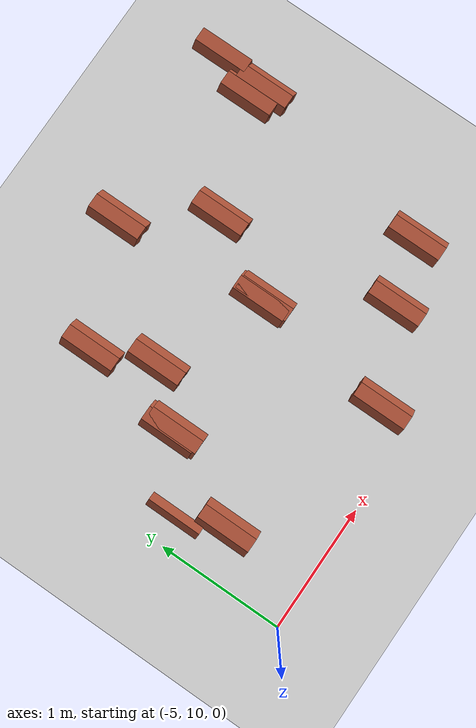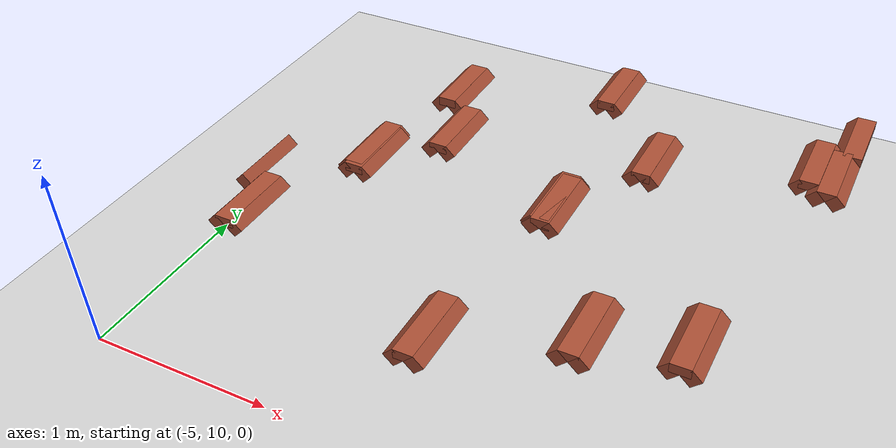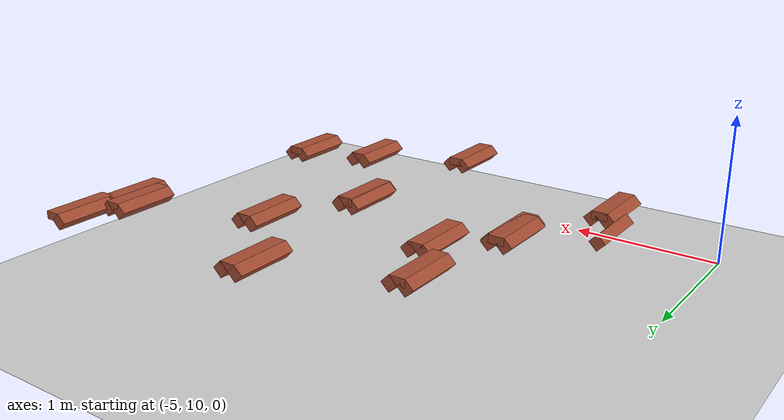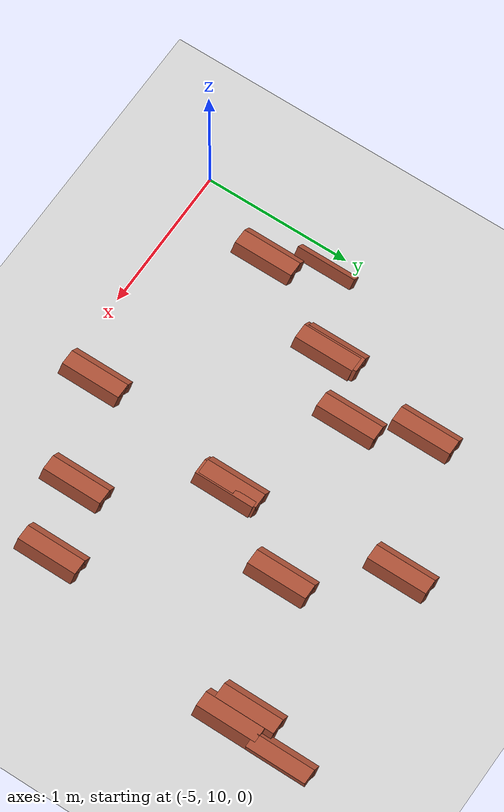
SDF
<sdf version="1.7">
 <world name="default">
  <model name="ground_plane">
   <static>1</static>
   <link name="link">
    <collision name="collision">
     <geometry><plane><normal>0 0 1</normal><size>100 100</size></plane></geometry>
     <surface><friction><ode><mu>100</mu><mu2>50</mu2></ode></friction></surface>
    </collision>
    <visual name="visual">
     <cast_shadows>0</cast_shadows>
     <geometry><plane><normal>0 0 1</normal><size>100 100</size></plane></geometry>
     <material>
      <script><uri>file://media/materials/scripts/gazebo.material</uri><name>Gazebo/Grey</name></script>
     </material>
    </visual>
   </link>
  </model>
  <model name="tumsek">
   <static>1</static>
   <pose>-5.17447 11.4027 0.5 0 -0 0</pose>
   <link name="tumsek_main_6">
    <pose>2.92633 -0.629082 0 0 -0 0</pose>
    <collision name="tumsek_Collision">
     <geometry><box><size>0.1 0.4 0.05</size></box></geometry>
     <pose>0 0 0.025 0 -0 0</pose>
    </collision>
    <visual name="tumsek_Visual">
     <pose>0 0 0.025 0 -0 0</pose>
     <geometry><box><size>0.1 0.4 0.05</size></box></geometry>
     <material>
      <script><uri>file://media/materials/scripts/gazebo.material</uri><name>Gazebo/Bricks</name></script>
      <ambient>1 1 1 1</ambient>
     </material>
     <meta><layer>0</layer></meta>
    </visual>
   </link>
   <link name="tumsek_front_6">
    <pose>2.97633 -0.629082 0 0 0.785 0</pose>
    <collision name="tumsek_Collision"><geometry><box><size>0.0707 0.4 0.0707</size></box></geometry></collision>
    <visual name="tumsek_Visual">
     <geometry><box><size>0.0707 0.4 0.0707</size></box></geometry>
     <material>
      <script><uri>file://media/materials/scripts/gazebo.material</uri><name>Gazebo/Bricks</name></script>
      <ambient>1 1 1 1</ambient>
     </material>
    </visual>
   </link>
   <link name="tumsek_back_6">
    <pose>2.87633 -0.629082 0 0 0.785 0</pose>
    <collision name="tumsek_Collision"><geometry><box><size>0.0707 0.4 0.0707</size></box></geometry></collision>
    <visual name="tumsek_Visual">
     <geometry><box><size>0.0707 0.4 0.0707</size></box></geometry>
     <material>
      <script><uri>file://media/materials/scripts/gazebo.material</uri><name>Gazebo/Bricks</name></script>
      <ambient>1 1 1 1</ambient>
     </material>
    </visual>
   </link>
   <link name="tumsek_main_7">
    <pose>1.08805 0.739805 0 0 -0 0</pose>
    <collision name="tumsek_Collision">
     <geometry><box><size>0.1 0.4 0.05</size></box></geometry>
     <pose>0 0 0.025 0 -0 0</pose>
    </collision>
    <visual name="tumsek_Visual">
     <pose>0 0 0.025 0 -0 0</pose>
     <geometry><box><size>0.1 0.4 0.05</size></box></geometry>
     <material>
      <script><uri>file://media/materials/scripts/gazebo.material</uri><name>Gazebo/Bricks</name></script>
      <ambient>1 1 1 1</ambient>
     </material>
     <meta><layer>0</layer></meta>
    </visual>
   </link>
   <link name="tumsek_front_7">
    <pose>1.13805 0.739805 0 0 0.785 0</pose>
    <collision name="tumsek_Collision"><geometry><box><size>0.0707 0.4 0.0707</size></box></geometry></collision>
    <visual name="tumsek_Visual">
     <geometry><box><size>0.0707 0.4 0.0707</size></box></geometry>
     <material>
      <script><uri>file://media/materials/scripts/gazebo.material</uri><name>Gazebo/Bricks</name></script>
      <ambient>1 1 1 1</ambient>
     </material>
    </visual>
   </link>
   <link name="tumsek_back_7">
    <pose>1.03805 0.739805 0 0 0.785 0</pose>
    <collision name="tumsek_Collision"><geometry><box><size>0.0707 0.4 0.0707</size></box></geometry></collision>
    <visual name="tumsek_Visual">
     <geometry><box><size>0.0707 0.4 0.0707</size></box></geometry>
     <material>
      <script><uri>file://media/materials/scripts/gazebo.material</uri><name>Gazebo/Bricks</name></script>
      <ambient>1 1 1 1</ambient>
     </material>
    </visual>
   </link>
   <link name="tumsek_main_8">
    <pose>3.2512 1.16803 0 0 -0 0</pose>
    <collision name="tumsek_Collision">
     <geometry><box><size>0.1 0.4 0.05</size></box></geometry>
     <pose>0 0 0.025 0 -0 0</pose>
    </collision>
    <visual name="tumsek_Visual">
     <pose>0 0 0.025 0 -0 0</pose>
     <geometry><box><size>0.1 0.4 0.05</size></box></geometry>
     <material>
      <script><uri>file://media/materials/scripts/gazebo.material</uri><name>Gazebo/Bricks</name></script>
      <ambient>1 1 1 1</ambient>
     </material>
     <meta><layer>0</layer></meta>
    </visual>
   </link>
   <link name="tumsek_back_8">
    <pose>3.2012 1.16803 0 0 0.785 0</pose>
    <collision name="tumsek_Collision"><geometry><box><size>0.0707 0.4 0.0707</size></box></geometry></collision>
    <visual name="tumsek_Visual">
     <geometry><box><size>0.0707 0.4 0.0707</size></box></geometry>
     <material>
      <script><uri>file://media/materials/scripts/gazebo.material</uri><name>Gazebo/Bricks</name></script>
      <ambient>1 1 1 1</ambient>
     </material>
    </visual>
   </link>
   <link name="tumsek_main_11">
    <pose>2.31423 0.549426 0 0 -0 0</pose>
    <collision name="tumsek_Collision">
     <geometry><box><size>0.1 0.4 0.05</size></box></geometry>
     <pose>0 0 0.025 0 -0 0</pose>
    </collision>
    <visual name="tumsek_Visual">
     <pose>0 0 0.025 0 -0 0</pose>
     <geometry><box><size>0.1 0.4 0.05</size></box></geometry>
     <material>
      <script><uri>file://media/materials/scripts/gazebo.material</uri><name>Gazebo/Bricks</name></script>
      <ambient>1 1 1 1</ambient>
     </material>
     <meta><layer>0</layer></meta>
    </visual>
   </link>
   <link name="tumsek_front_11">
    <pose>2.36423 0.549426 0 0 0.785 0</pose>
    <collision name="tumsek_Collision"><geometry><box><size>0.0707 0.4 0.0707</size></box></geometry></collision>
    <visual name="tumsek_Visual">
     <geometry><box><size>0.0707 0.4 0.0707</size></box></geometry>
     <material>
      <script><uri>file://media/materials/scripts/gazebo.material</uri><name>Gazebo/Bricks</name></script>
      <ambient>1 1 1 1</ambient>
     </material>
    </visual>
   </link>
   <link name="tumsek_back_11">
    <pose>2.26423 0.549426 0 0 0.785 0</pose>
    <collision name="tumsek_Collision"><geometry><box><size>0.0707 0.4 0.0707</size></box></geometry></collision>
    <visual name="tumsek_Visual">
     <geometry><box><size>0.0707 0.4 0.0707</size></box></geometry>
     <material>
      <script><uri>file://media/materials/scripts/gazebo.material</uri><name>Gazebo/Bricks</name></script>
      <ambient>1 1 1 1</ambient>
     </material>
    </visual>
   </link>
   <link name="tumsek_main_22">
    <pose>3.20055 0.798281 0 0 -0 0</pose>
    <collision name="tumsek_Collision">
     <geometry><box><size>0.1 0.4 0.05</size></box></geometry>
     <pose>0 0 0.025 0 -0 0</pose>
    </collision>
    <visual name="tumsek_Visual">
     <pose>0 0 0.025 0 -0 0</pose>
     <geometry><box><size>0.1 0.4 0.05</size></box></geometry>
     <material>
      <script><uri>file://media/materials/scripts/gazebo.material</uri><name>Gazebo/Bricks</name></script>
      <ambient>1 1 1 1</ambient>
     </material>
     <meta><layer>0</layer></meta>
    </visual>
   </link>
   <link name="tumsek_front_22">
    <pose>3.25055 0.798281 0 0 0.785 0</pose>
    <collision name="tumsek_Collision"><geometry><box><size>0.0707 0.4 0.0707</size></box></geometry></collision>
    <visual name="tumsek_Visual">
     <geometry><box><size>0.0707 0.4 0.0707</size></box></geometry>
     <material>
      <script><uri>file://media/materials/scripts/gazebo.material</uri><name>Gazebo/Bricks</name></script>
      <ambient>1 1 1 1</ambient>
     </material>
    </visual>
   </link>
   <link name="tumsek_back_22">
    <pose>3.15055 0.798281 0 0 0.785 0</pose>
    <collision name="tumsek_Collision"><geometry><box><size>0.0707 0.4 0.0707</size></box></geometry></collision>
    <visual name="tumsek_Visual">
     <geometry><box><size>0.0707 0.4 0.0707</size></box></geometry>
     <material>
      <script><uri>file://media/materials/scripts/gazebo.material</uri><name>Gazebo/Bricks</name></script>
      <ambient>1 1 1 1</ambient>
     </material>
    </visual>
   </link>
   <link name="tumsek_main_23">
    <pose>1.8665 -1.06323 0 0 -0 0</pose>
    <collision name="tumsek_Collision">
     <geometry><box><size>0.1 0.4 0.05</size></box></geometry>
     <pose>0 0 0.025 0 -0 0</pose>
    </collision>
    <visual name="tumsek_Visual">
     <pose>0 0 0.025 0 -0 0</pose>
     <geometry><box><size>0.1 0.4 0.05</size></box></geometry>
     <material>
      <script><uri>file://media/materials/scripts/gazebo.material</uri><name>Gazebo/Bricks</name></script>
      <ambient>1 1 1 1</ambient>
     </material>
     <meta><layer>0</layer></meta>
    </visual>
   </link>
   <link name="tumsek_front_23">
    <pose>1.9165 -1.06323 0 0 0.785 0</pose>
    <collision name="tumsek_Collision"><geometry><box><size>0.0707 0.4 0.0707</size></box></geometry></collision>
    <visual name="tumsek_Visual">
     <geometry><box><size>0.0707 0.4 0.0707</size></box></geometry>
     <material>
      <script><uri>file://media/materials/scripts/gazebo.material</uri><name>Gazebo/Bricks</name></script>
      <ambient>1 1 1 1</ambient>
     </material>
    </visual>
   </link>
   <link name="tumsek_back_23">
    <pose>1.8165 -1.06323 0 0 0.785 0</pose>
    <collision name="tumsek_Collision"><geometry><box><size>0.0707 0.4 0.0707</size></box></geometry></collision>
    <visual name="tumsek_Visual">
     <geometry><box><size>0.0707 0.4 0.0707</size></box></geometry>
     <material>
      <script><uri>file://media/materials/scripts/gazebo.material</uri><name>Gazebo/Bricks</name></script>
      <ambient>1 1 1 1</ambient>
     </material>
    </visual>
   </link>
   <link name="tumsek_main_25">
    <pose>2.01096 -0.019513 0 0 -0 0</pose>
    <collision name="tumsek_Collision">
     <geometry><box><size>0.1 0.4 0.05</size></box></geometry>
     <pose>0 0 0.025 0 -0 0</pose>
    </collision>
    <visual name="tumsek_Visual">
     <pose>0 0 0.025 0 -0 0</pose>
     <geometry><box><size>0.1 0.4 0.05</size></box></geometry>
     <material>
      <script><uri>file://media/materials/scripts/gazebo.material</uri><name>Gazebo/Bricks</name></script>
      <ambient>1 1 1 1</ambient>
     </material>
     <meta><layer>0</layer></meta>
    </visual>
   </link>
   <link name="tumsek_front_25">
    <pose>2.06095 -0.019513 0 0 0.785 0</pose>
    <collision name="tumsek_Collision"><geometry><box><size>0.0707 0.4 0.0707</size></box></geometry></collision>
    <visual name="tumsek_Visual">
     <geometry><box><size>0.0707 0.4 0.0707</size></box></geometry>
     <material>
      <script><uri>file://media/materials/scripts/gazebo.material</uri><name>Gazebo/Bricks</name></script>
      <ambient>1 1 1 1</ambient>
     </material>
    </visual>
   </link>
   <link name="tumsek_back_25">
    <pose>1.96096 -0.019513 0 0 0.785 0</pose>
    <collision name="tumsek_Collision"><geometry><box><size>0.0707 0.4 0.0707</size></box></geometry></collision>
    <visual name="tumsek_Visual">
     <geometry><box><size>0.0707 0.4 0.0707</size></box></geometry>
     <material>
      <script><uri>file://media/materials/scripts/gazebo.material</uri><name>Gazebo/Bricks</name></script>
      <ambient>1 1 1 1</ambient>
     </material>
    </visual>
   </link>
   <link name="tumsek_main_26">
    <pose>0.957826 -0.026631 0 0 -0 0</pose>
    <collision name="tumsek_Collision">
     <geometry><box><size>0.1 0.4 0.05</size></box></geometry>
     <pose>0 0 0.025 0 -0 0</pose>
    </collision>
    <visual name="tumsek_Visual">
     <pose>0 0 0.025 0 -0 0</pose>
     <geometry><box><size>0.1 0.4 0.05</size></box></geometry>
     <material>
      <script><uri>file://media/materials/scripts/gazebo.material</uri><name>Gazebo/Bricks</name></script>
      <ambient>1 1 1 1</ambient>
     </material>
     <meta><layer>0</layer></meta>
    </visual>
   </link>
   <link name="tumsek_front_26">
    <pose>1.00783 -0.026631 0 0 0.785 0</pose>
    <collision name="tumsek_Collision"><geometry><box><size>0.0707 0.4 0.0707</size></box></geometry></collision>
    <visual name="tumsek_Visual">
     <geometry><box><size>0.0707 0.4 0.0707</size></box></geometry>
     <material>
      <script><uri>file://media/materials/scripts/gazebo.material</uri><name>Gazebo/Bricks</name></script>
      <ambient>1 1 1 1</ambient>
     </material>
    </visual>
   </link>
   <link name="tumsek_back_26">
    <pose>0.907826 -0.026631 0 0 0.785 0</pose>
    <collision name="tumsek_Collision"><geometry><box><size>0.0707 0.4 0.0707</size></box></geometry></collision>
    <visual name="tumsek_Visual">
     <geometry><box><size>0.0707 0.4 0.0707</size></box></geometry>
     <material>
      <script><uri>file://media/materials/scripts/gazebo.material</uri><name>Gazebo/Bricks</name></script>
      <ambient>1 1 1 1</ambient>
     </material>
    </visual>
   </link>
   <link name="tumsek_main_34">
    <pose>1.90357 1.10206 0 0 -0 0</pose>
    <collision name="tumsek_Collision">
     <geometry><box><size>0.1 0.4 0.05</size></box></geometry>
     <pose>0 0 0.025 0 -0 0</pose>
    </collision>
    <visual name="tumsek_Visual">
     <pose>0 0 0.025 0 -0 0</pose>
     <geometry><box><size>0.1 0.4 0.05</size></box></geometry>
     <material>
      <script><uri>file://media/materials/scripts/gazebo.material</uri><name>Gazebo/Bricks</name></script>
      <ambient>1 1 1 1</ambient>
     </material>
     <meta><layer>0</layer></meta>
    </visual>
   </link>
   <link name="tumsek_front_34">
    <pose>1.95357 1.10206 0 0 0.785 0</pose>
    <collision name="tumsek_Collision"><geometry><box><size>0.0707 0.4 0.0707</size></box></geometry></collision>
    <visual name="tumsek_Visual">
     <geometry><box><size>0.0707 0.4 0.0707</size></box></geometry>
     <material>
      <script><uri>file://media/materials/scripts/gazebo.material</uri><name>Gazebo/Bricks</name></script>
      <ambient>1 1 1 1</ambient>
     </material>
    </visual>
   </link>
   <link name="tumsek_back_34">
    <pose>1.85357 1.10206 0 0 0.785 0</pose>
    <collision name="tumsek_Collision"><geometry><box><size>0.0707 0.4 0.0707</size></box></geometry></collision>
    <visual name="tumsek_Visual">
     <geometry><box><size>0.0707 0.4 0.0707</size></box></geometry>
     <material>
      <script><uri>file://media/materials/scripts/gazebo.material</uri><name>Gazebo/Bricks</name></script>
      <ambient>1 1 1 1</ambient>
     </material>
    </visual>
   </link>
   <link name="tumsek_main_35">
    <pose>2.00097 -0.004756 0 0 -0 0</pose>
    <collision name="tumsek_Collision">
     <geometry><box><size>0.1 0.4 0.05</size></box></geometry>
     <pose>0 0 0.025 0 -0 0</pose>
    </collision>
    <visual name="tumsek_Visual">
     <pose>0 0 0.025 0 -0 0</pose>
     <geometry><box><size>0.1 0.4 0.05</size></box></geometry>
     <material>
      <script><uri>file://media/materials/scripts/gazebo.material</uri><name>Gazebo/Bricks</name></script>
      <ambient>1 1 1 1</ambient>
     </material>
     <meta><layer>0</layer></meta>
    </visual>
   </link>
   <link name="tumsek_front_35">
    <pose>2.05097 -0.004756 0 0 0.785 0</pose>
    <collision name="tumsek_Collision"><geometry><box><size>0.0707 0.4 0.0707</size></box></geometry></collision>
    <visual name="tumsek_Visual">
     <geometry><box><size>0.0707 0.4 0.0707</size></box></geometry>
     <material>
      <script><uri>file://media/materials/scripts/gazebo.material</uri><name>Gazebo/Bricks</name></script>
      <ambient>1 1 1 1</ambient>
     </material>
    </visual>
   </link>
   <link name="tumsek_back_35">
    <pose>1.95097 -0.004756 0 0 0.785 0</pose>
    <collision name="tumsek_Collision"><geometry><box><size>0.0707 0.4 0.0707</size></box></geometry></collision>
    <visual name="tumsek_Visual">
     <geometry><box><size>0.0707 0.4 0.0707</size></box></geometry>
     <material>
      <script><uri>file://media/materials/scripts/gazebo.material</uri><name>Gazebo/Bricks</name></script>
      <ambient>1 1 1 1</ambient>
     </material>
    </visual>
   </link>
   <link name="tumsek_main_43">
    <pose>0.634692 -0.672287 0 0 -0 0</pose>
    <collision name="tumsek_Collision">
     <geometry><box><size>0.1 0.4 0.05</size></box></geometry>
     <pose>0 0 0.025 0 -0 0</pose>
    </collision>
    <visual name="tumsek_Visual">
     <pose>0 0 0.025 0 -0 0</pose>
     <geometry><box><size>0.1 0.4 0.05</size></box></geometry>
     <material>
      <script><uri>file://media/materials/scripts/gazebo.material</uri><name>Gazebo/Bricks</name></script>
      <ambient>1 1 1 1</ambient>
     </material>
     <meta><layer>0</layer></meta>
    </visual>
   </link>
   <link name="tumsek_front_43">
    <pose>0.684692 -0.672287 0 0 0.785 0</pose>
    <collision name="tumsek_Collision"><geometry><box><size>0.0707 0.4 0.0707</size></box></geometry></collision>
    <visual name="tumsek_Visual">
     <geometry><box><size>0.0707 0.4 0.0707</size></box></geometry>
     <material>
      <script><uri>file://media/materials/scripts/gazebo.material</uri><name>Gazebo/Bricks</name></script>
      <ambient>1 1 1 1</ambient>
     </material>
    </visual>
   </link>
   <link name="tumsek_back_43">
    <pose>0.584692 -0.672287 0 0 0.785 0</pose>
    <collision name="tumsek_Collision"><geometry><box><size>0.0707 0.4 0.0707</size></box></geometry></collision>
    <visual name="tumsek_Visual">
     <geometry><box><size>0.0707 0.4 0.0707</size></box></geometry>
     <material>
      <script><uri>file://media/materials/scripts/gazebo.material</uri><name>Gazebo/Bricks</name></script>
      <ambient>1 1 1 1</ambient>
     </material>
    </visual>
   </link>
   <link name="tumsek_main_46">
    <pose>1.25877 0.324215 0 0 -0 0</pose>
    <collision name="tumsek_Collision">
     <geometry><box><size>0.1 0.4 0.05</size></box></geometry>
     <pose>0 0 0.025 0 -0 0</pose>
    </collision>
    <visual name="tumsek_Visual">
     <pose>0 0 0.025 0 -0 0</pose>
     <geometry><box><size>0.1 0.4 0.05</size></box></geometry>
     <material>
      <script><uri>file://media/materials/scripts/gazebo.material</uri><name>Gazebo/Bricks</name></script>
      <ambient>1 1 1 1</ambient>
     </material>
     <meta><layer>0</layer></meta>
    </visual>
   </link>
   <link name="tumsek_front_46">
    <pose>1.30877 0.324215 0 0 0.785 0</pose>
    <collision name="tumsek_Collision"><geometry><box><size>0.0707 0.4 0.0707</size></box></geometry></collision>
    <visual name="tumsek_Visual">
     <geometry><box><size>0.0707 0.4 0.0707</size></box></geometry>
     <material>
      <script><uri>file://media/materials/scripts/gazebo.material</uri><name>Gazebo/Bricks</name></script>
      <ambient>1 1 1 1</ambient>
     </material>
    </visual>
   </link>
   <link name="tumsek_back_46">
    <pose>1.20877 0.324215 0 0 0.785 0</pose>
    <collision name="tumsek_Collision"><geometry><box><size>0.0707 0.4 0.0707</size></box></geometry></collision>
    <visual name="tumsek_Visual">
     <geometry><box><size>0.0707 0.4 0.0707</size></box></geometry>
     <material>
      <script><uri>file://media/materials/scripts/gazebo.material</uri><name>Gazebo/Bricks</name></script>
      <ambient>1 1 1 1</ambient>
     </material>
    </visual>
   </link>
   <link name="tumsek_main_48">
    <pose>3.09964 0.856042 0 0 -0 0</pose>
    <collision name="tumsek_Collision">
     <geometry><box><size>0.1 0.4 0.05</size></box></geometry>
     <pose>0 0 0.025 0 -0 0</pose>
    </collision>
    <visual name="tumsek_Visual">
     <pose>0 0 0.025 0 -0 0</pose>
     <geometry><box><size>0.1 0.4 0.05</size></box></geometry>
     <material>
      <script><uri>file://media/materials/scripts/gazebo.material</uri><name>Gazebo/Bricks</name></script>
      <ambient>1 1 1 1</ambient>
     </material>
     <meta><layer>0</layer></meta>
    </visual>
   </link>
   <link name="tumsek_front_48">
    <pose>3.14963 0.856042 0 0 0.785 0</pose>
    <collision name="tumsek_Collision"><geometry><box><size>0.0707 0.4 0.0707</size></box></geometry></collision>
    <visual name="tumsek_Visual">
     <geometry><box><size>0.0707 0.4 0.0707</size></box></geometry>
     <material>
      <script><uri>file://media/materials/scripts/gazebo.material</uri><name>Gazebo/Bricks</name></script>
      <ambient>1 1 1 1</ambient>
     </material>
    </visual>
   </link>
   <link name="tumsek_back_48">
    <pose>3.04963 0.856042 0 0 0.785 0</pose>
    <collision name="tumsek_Collision"><geometry><box><size>0.0707 0.4 0.0707</size></box></geometry></collision>
    <visual name="tumsek_Visual">
     <geometry><box><size>0.0707 0.4 0.0707</size></box></geometry>
     <material>
      <script><uri>file://media/materials/scripts/gazebo.material</uri><name>Gazebo/Bricks</name></script>
      <ambient>1 1 1 1</ambient>
     </material>
    </visual>
   </link>
   <link name="tumsek_main_49">
    <pose>0.94678 -0.004355 0 0 -0 0</pose>
    <collision name="tumsek_Collision">
     <geometry><box><size>0.1 0.4 0.05</size></box></geometry>
     <pose>0 0 0.025 0 -0 0</pose>
    </collision>
    <visual name="tumsek_Visual">
     <pose>0 0 0.025 0 -0 0</pose>
     <geometry><box><size>0.1 0.4 0.05</size></box></geometry>
     <material>
      <script><uri>file://media/materials/scripts/gazebo.material</uri><name>Gazebo/Bricks</name></script>
      <ambient>1 1 1 1</ambient>
     </material>
     <meta><layer>0</layer></meta>
    </visual>
   </link>
   <link name="tumsek_front_49">
    <pose>0.99678 -0.004355 0 0 0.785 0</pose>
    <collision name="tumsek_Collision"><geometry><box><size>0.0707 0.4 0.0707</size></box></geometry></collision>
    <visual name="tumsek_Visual">
     <geometry><box><size>0.0707 0.4 0.0707</size></box></geometry>
     <material>
      <script><uri>file://media/materials/scripts/gazebo.material</uri><name>Gazebo/Bricks</name></script>
      <ambient>1 1 1 1</ambient>
     </material>
    </visual>
   </link>
   <link name="tumsek_back_49">
    <pose>0.89678 -0.004355 0 0 0.785 0</pose>
    <collision name="tumsek_Collision"><geometry><box><size>0.0707 0.4 0.0707</size></box></geometry></collision>
    <visual name="tumsek_Visual">
     <geometry><box><size>0.0707 0.4 0.0707</size></box></geometry>
     <material>
      <script><uri>file://media/materials/scripts/gazebo.material</uri><name>Gazebo/Bricks</name></script>
      <ambient>1 1 1 1</ambient>
     </material>
    </visual>
   </link>
   <link name="tumsek_main_50">
    <pose>2.48348 -0.764282 0 0 -0 0</pose>
    <collision name="tumsek_Collision">
     <geometry><box><size>0.1 0.4 0.05</size></box></geometry>
     <pose>0 0 0.025 0 -0 0</pose>
    </collision>
    <visual name="tumsek_Visual">
     <pose>0 0 0.025 0 -0 0</pose>
     <geometry><box><size>0.1 0.4 0.05</size></box></geometry>
     <material>
      <script><uri>file://media/materials/scripts/gazebo.material</uri><name>Gazebo/Bricks</name></script>
      <ambient>1 1 1 1</ambient>
     </material>
     <meta><layer>0</layer></meta>
    </visual>
   </link>
   <link name="tumsek_front_50">
    <pose>2.53348 -0.764282 0 0 0.785 0</pose>
    <collision name="tumsek_Collision"><geometry><box><size>0.0707 0.4 0.0707</size></box></geometry></collision>
    <visual name="tumsek_Visual">
     <geometry><box><size>0.0707 0.4 0.0707</size></box></geometry>
     <material>
      <script><uri>file://media/materials/scripts/gazebo.material</uri><name>Gazebo/Bricks</name></script>
      <ambient>1 1 1 1</ambient>
     </material>
    </visual>
   </link>
   <link name="tumsek_back_50">
    <pose>2.43348 -0.764282 0 0 0.785 0</pose>
    <collision name="tumsek_Collision"><geometry><box><size>0.0707 0.4 0.0707</size></box></geometry></collision>
    <visual name="tumsek_Visual">
     <geometry><box><size>0.0707 0.4 0.0707</size></box></geometry>
     <material>
      <script><uri>file://media/materials/scripts/gazebo.material</uri><name>Gazebo/Bricks</name></script>
      <ambient>1 1 1 1</ambient>
     </material>
    </visual>
   </link>
   <link name="tumsek_front_59">
    <pose>0.498721 -0.345806 0 0 0.785 0</pose>
    <collision name="tumsek_Collision"><geometry><box><size>0.0707 0.4 0.0707</size></box></geometry></collision>
    <visual name="tumsek_Visual">
     <geometry><box><size>0.0707 0.4 0.0707</size></box></geometry>
     <material>
      <script><uri>file://media/materials/scripts/gazebo.material</uri><name>Gazebo/Bricks</name></script>
      <ambient>1 1 1 1</ambient>
     </material>
    </visual>
   </link>
  </model>
 </world>
</sdf>
